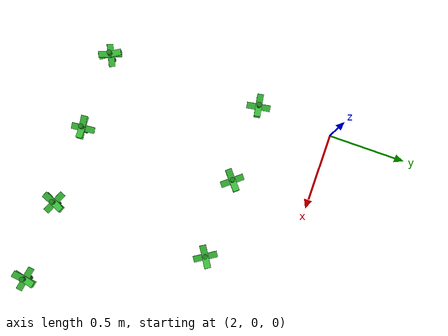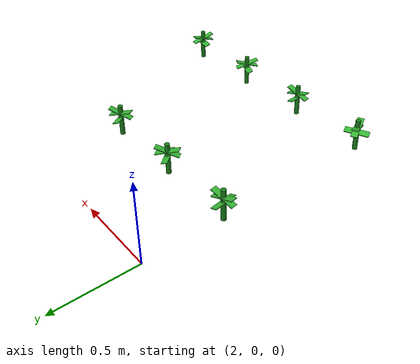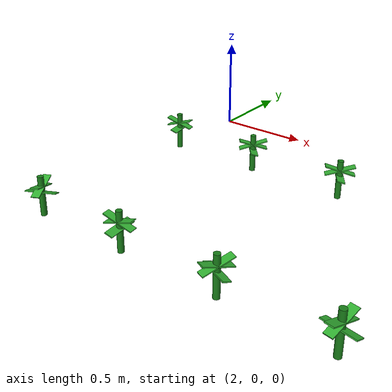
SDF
<sdf version="1.6">
 <world name="farm_world">
  <include><uri>model://sun</uri></include>
  <model name="plant_56">
   <pose>2.0 -1.5 0 0 0 2.0311658083533373</pose>
   <static>true</static>
   <link name="link">
    <visual name="stem">
     <pose>0 0 0.1 0 0 0</pose>
     <geometry><cylinder><radius>0.015</radius><length>0.2</length></cylinder></geometry>
     <material><ambient>0.1 0.5 0.1 1</ambient><diffuse>0.1 0.5 0.1 1</diffuse></material>
    </visual>
    <visual name="leaf_1">
     <pose>0 0 0.15 0 0.3 0</pose>
     <geometry><box><size>0.15 0.04 0.005</size></box></geometry>
     <material><ambient>0.2 0.7 0.2 1</ambient><diffuse>0.2 0.7 0.2 1</diffuse></material>
    </visual>
    <visual name="leaf_2">
     <pose>0 0 0.15 0 -0.3 0</pose>
     <geometry><box><size>0.15 0.04 0.005</size></box></geometry>
     <material><ambient>0.2 0.7 0.2 1</ambient><diffuse>0.2 0.7 0.2 1</diffuse></material>
    </visual>
    <visual name="leaf_3">
     <pose>0 0 0.12 0.3 0 1.57</pose>
     <geometry><box><size>0.15 0.04 0.005</size></box></geometry>
     <material><ambient>0.2 0.7 0.2 1</ambient><diffuse>0.2 0.7 0.2 1</diffuse></material>
    </visual>
    <collision name="collision">
     <pose>0 0 0.1 0 0 0</pose>
     <geometry><cylinder><radius>0.05</radius><length>0.2</length></cylinder></geometry>
    </collision>
   </link>
  </model>
  <model name="plant_57">
   <pose>2.0 -0.5 0 0 0 0.1732604501472267</pose>
   <static>true</static>
   <link name="link">
    <visual name="stem">
     <pose>0 0 0.1 0 0 0</pose>
     <geometry><cylinder><radius>0.015</radius><length>0.2</length></cylinder></geometry>
     <material><ambient>0.1 0.5 0.1 1</ambient><diffuse>0.1 0.5 0.1 1</diffuse></material>
    </visual>
    <visual name="leaf_1">
     <pose>0 0 0.15 0 0.3 0</pose>
     <geometry><box><size>0.15 0.04 0.005</size></box></geometry>
     <material><ambient>0.2 0.7 0.2 1</ambient><diffuse>0.2 0.7 0.2 1</diffuse></material>
    </visual>
    <visual name="leaf_2">
     <pose>0 0 0.15 0 -0.3 0</pose>
     <geometry><box><size>0.15 0.04 0.005</size></box></geometry>
     <material><ambient>0.2 0.7 0.2 1</ambient><diffuse>0.2 0.7 0.2 1</diffuse></material>
    </visual>
    <visual name="leaf_3">
     <pose>0 0 0.12 0.3 0 1.57</pose>
     <geometry><box><size>0.15 0.04 0.005</size></box></geometry>
     <material><ambient>0.2 0.7 0.2 1</ambient><diffuse>0.2 0.7 0.2 1</diffuse></material>
    </visual>
    <collision name="collision">
     <pose>0 0 0.1 0 0 0</pose>
     <geometry><cylinder><radius>0.05</radius><length>0.2</length></cylinder></geometry>
    </collision>
   </link>
  </model>
  <model name="plant_60">
   <pose>2.5 -1.5 0 0 0 0.10901419127990271</pose>
   <static>true</static>
   <link name="link">
    <visual name="stem">
     <pose>0 0 0.1 0 0 0</pose>
     <geometry><cylinder><radius>0.015</radius><length>0.2</length></cylinder></geometry>
     <material><ambient>0.1 0.5 0.1 1</ambient><diffuse>0.1 0.5 0.1 1</diffuse></material>
    </visual>
    <visual name="leaf_1">
     <pose>0 0 0.15 0 0.3 0</pose>
     <geometry><box><size>0.15 0.04 0.005</size></box></geometry>
     <material><ambient>0.2 0.7 0.2 1</ambient><diffuse>0.2 0.7 0.2 1</diffuse></material>
    </visual>
    <visual name="leaf_2">
     <pose>0 0 0.15 0 -0.3 0</pose>
     <geometry><box><size>0.15 0.04 0.005</size></box></geometry>
     <material><ambient>0.2 0.7 0.2 1</ambient><diffuse>0.2 0.7 0.2 1</diffuse></material>
    </visual>
    <visual name="leaf_3">
     <pose>0 0 0.12 0.3 0 1.57</pose>
     <geometry><box><size>0.15 0.04 0.005</size></box></geometry>
     <material><ambient>0.2 0.7 0.2 1</ambient><diffuse>0.2 0.7 0.2 1</diffuse></material>
    </visual>
    <collision name="collision">
     <pose>0 0 0.1 0 0 0</pose>
     <geometry><cylinder><radius>0.05</radius><length>0.2</length></cylinder></geometry>
    </collision>
   </link>
  </model>
  <model name="plant_61">
   <pose>2.5 -0.5 0 0 0 0.6950960757748695</pose>
   <static>true</static>
   <link name="link">
    <visual name="stem">
     <pose>0 0 0.1 0 0 0</pose>
     <geometry><cylinder><radius>0.015</radius><length>0.2</length></cylinder></geometry>
     <material><ambient>0.1 0.5 0.1 1</ambient><diffuse>0.1 0.5 0.1 1</diffuse></material>
    </visual>
    <visual name="leaf_1">
     <pose>0 0 0.15 0 0.3 0</pose>
     <geometry><box><size>0.15 0.04 0.005</size></box></geometry>
     <material><ambient>0.2 0.7 0.2 1</ambient><diffuse>0.2 0.7 0.2 1</diffuse></material>
    </visual>
    <visual name="leaf_2">
     <pose>0 0 0.15 0 -0.3 0</pose>
     <geometry><box><size>0.15 0.04 0.005</size></box></geometry>
     <material><ambient>0.2 0.7 0.2 1</ambient><diffuse>0.2 0.7 0.2 1</diffuse></material>
    </visual>
    <visual name="leaf_3">
     <pose>0 0 0.12 0.3 0 1.57</pose>
     <geometry><box><size>0.15 0.04 0.005</size></box></geometry>
     <material><ambient>0.2 0.7 0.2 1</ambient><diffuse>0.2 0.7 0.2 1</diffuse></material>
    </visual>
    <collision name="collision">
     <pose>0 0 0.1 0 0 0</pose>
     <geometry><cylinder><radius>0.05</radius><length>0.2</length></cylinder></geometry>
    </collision>
   </link>
  </model>
  <model name="plant_64">
   <pose>3.0 -1.5 0 0 0 1.16193864421519</pose>
   <static>true</static>
   <link name="link">
    <visual name="stem">
     <pose>0 0 0.1 0 0 0</pose>
     <geometry><cylinder><radius>0.015</radius><length>0.2</length></cylinder></geometry>
     <material><ambient>0.1 0.5 0.1 1</ambient><diffuse>0.1 0.5 0.1 1</diffuse></material>
    </visual>
    <visual name="leaf_1">
     <pose>0 0 0.15 0 0.3 0</pose>
     <geometry><box><size>0.15 0.04 0.005</size></box></geometry>
     <material><ambient>0.2 0.7 0.2 1</ambient><diffuse>0.2 0.7 0.2 1</diffuse></material>
    </visual>
    <visual name="leaf_2">
     <pose>0 0 0.15 0 -0.3 0</pose>
     <geometry><box><size>0.15 0.04 0.005</size></box></geometry>
     <material><ambient>0.2 0.7 0.2 1</ambient><diffuse>0.2 0.7 0.2 1</diffuse></material>
    </visual>
    <visual name="leaf_3">
     <pose>0 0 0.12 0.3 0 1.57</pose>
     <geometry><box><size>0.15 0.04 0.005</size></box></geometry>
     <material><ambient>0.2 0.7 0.2 1</ambient><diffuse>0.2 0.7 0.2 1</diffuse></material>
    </visual>
    <collision name="collision">
     <pose>0 0 0.1 0 0 0</pose>
     <geometry><cylinder><radius>0.05</radius><length>0.2</length></cylinder></geometry>
    </collision>
   </link>
  </model>
  <model name="plant_65">
   <pose>3.0 -0.5 0 0 0 0.567108728219896</pose>
   <static>true</static>
   <link name="link">
    <visual name="stem">
     <pose>0 0 0.1 0 0 0</pose>
     <geometry><cylinder><radius>0.015</radius><length>0.2</length></cylinder></geometry>
     <material><ambient>0.1 0.5 0.1 1</ambient><diffuse>0.1 0.5 0.1 1</diffuse></material>
    </visual>
    <visual name="leaf_1">
     <pose>0 0 0.15 0 0.3 0</pose>
     <geometry><box><size>0.15 0.04 0.005</size></box></geometry>
     <material><ambient>0.2 0.7 0.2 1</ambient><diffuse>0.2 0.7 0.2 1</diffuse></material>
    </visual>
    <visual name="leaf_2">
     <pose>0 0 0.15 0 -0.3 0</pose>
     <geometry><box><size>0.15 0.04 0.005</size></box></geometry>
     <material><ambient>0.2 0.7 0.2 1</ambient><diffuse>0.2 0.7 0.2 1</diffuse></material>
    </visual>
    <visual name="leaf_3">
     <pose>0 0 0.12 0.3 0 1.57</pose>
     <geometry><box><size>0.15 0.04 0.005</size></box></geometry>
     <material><ambient>0.2 0.7 0.2 1</ambient><diffuse>0.2 0.7 0.2 1</diffuse></material>
    </visual>
    <collision name="collision">
     <pose>0 0 0.1 0 0 0</pose>
     <geometry><cylinder><radius>0.05</radius><length>0.2</length></cylinder></geometry>
    </collision>
   </link>
  </model>
  <model name="plant_68">
   <pose>3.5 -1.5 0 0 0 1.4001847902029259</pose>
   <static>true</static>
   <link name="link">
    <visual name="stem">
     <pose>0 0 0.1 0 0 0</pose>
     <geometry><cylinder><radius>0.015</radius><length>0.2</length></cylinder></geometry>
     <material><ambient>0.1 0.5 0.1 1</ambient><diffuse>0.1 0.5 0.1 1</diffuse></material>
    </visual>
    <visual name="leaf_1">
     <pose>0 0 0.15 0 0.3 0</pose>
     <geometry><box><size>0.15 0.04 0.005</size></box></geometry>
     <material><ambient>0.2 0.7 0.2 1</ambient><diffuse>0.2 0.7 0.2 1</diffuse></material>
    </visual>
    <visual name="leaf_2">
     <pose>0 0 0.15 0 -0.3 0</pose>
     <geometry><box><size>0.15 0.04 0.005</size></box></geometry>
     <material><ambient>0.2 0.7 0.2 1</ambient><diffuse>0.2 0.7 0.2 1</diffuse></material>
    </visual>
    <visual name="leaf_3">
     <pose>0 0 0.12 0.3 0 1.57</pose>
     <geometry><box><size>0.15 0.04 0.005</size></box></geometry>
     <material><ambient>0.2 0.7 0.2 1</ambient><diffuse>0.2 0.7 0.2 1</diffuse></material>
    </visual>
    <collision name="collision">
     <pose>0 0 0.1 0 0 0</pose>
     <geometry><cylinder><radius>0.05</radius><length>0.2</length></cylinder></geometry>
    </collision>
   </link>
  </model>
 </world>
</sdf>
